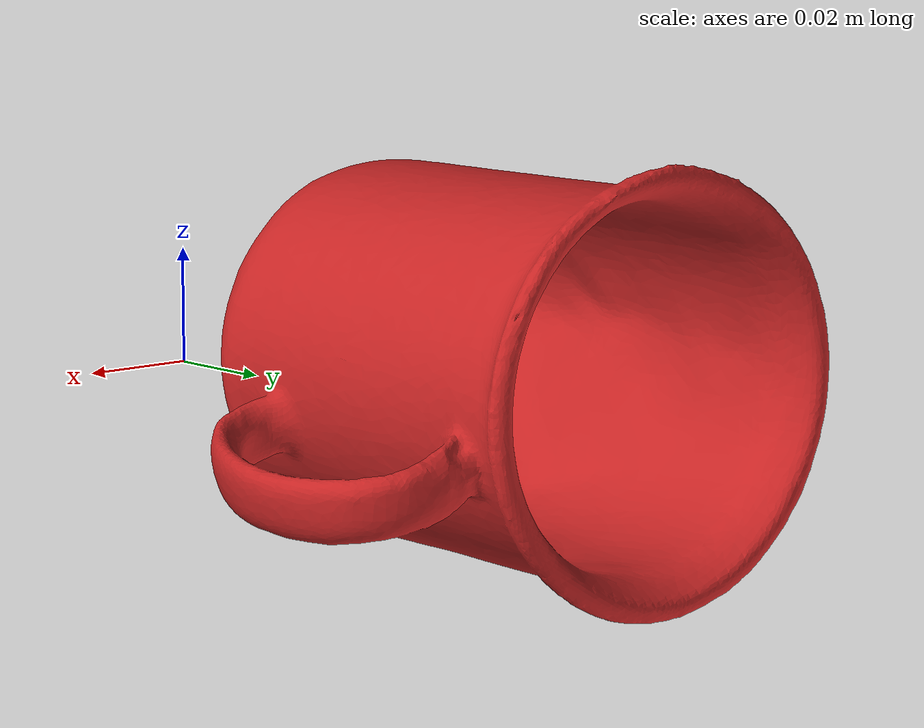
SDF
<?xml version='1.0'?>
<sdf version="1.4">
  <model name="RedCup">
    <static>false</static>
    <link name="link">
      <inertial>
        <pose>-0.008396485107162064 0.07249706946194334 0.005434671850689658 -1.48895912011982 1.2937944554456362 -3.12104512004993</pose>
        <mass>0.03252186734878255</mass>
        <inertia>
          <ixx>2.9915674934274723e-05</ixx>
          <ixy>7.387583173119901e-22</ixy>
          <ixz>-7.00750427988377e-21</ixz>
          <iyy>2.4959340533520188e-05</iyy>
          <iyz>-1.3804959971888986e-21</iyz>
          <izz>2.2467888441627576e-05</izz>
        </inertia>
      </inertial>
      <collision name="collision">
        <geometry>
          <mesh>
            <!-- Use a downsampled mesh for collisions -->
            <uri>model:///RedCup/RedCup_250_collision.obj</uri>
	        </mesh>
        </geometry>
        <surface>
      </surface>
      </collision>
      <visual name="visual">
        <geometry>
          <mesh>
            <uri>model:///RedCup/RedCup_25k_tex.obj</uri>
	        </mesh>
        </geometry>
        <material>
          <script>
            <uri>model:///RedCup/RedCup.material</uri>
            <name>RedCup</name>
          </script>
        </material>
      </visual>
    </link>
  </model>
</sdf>
